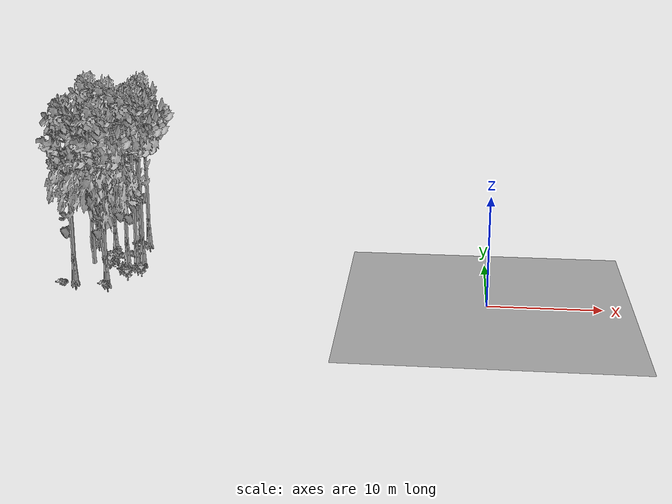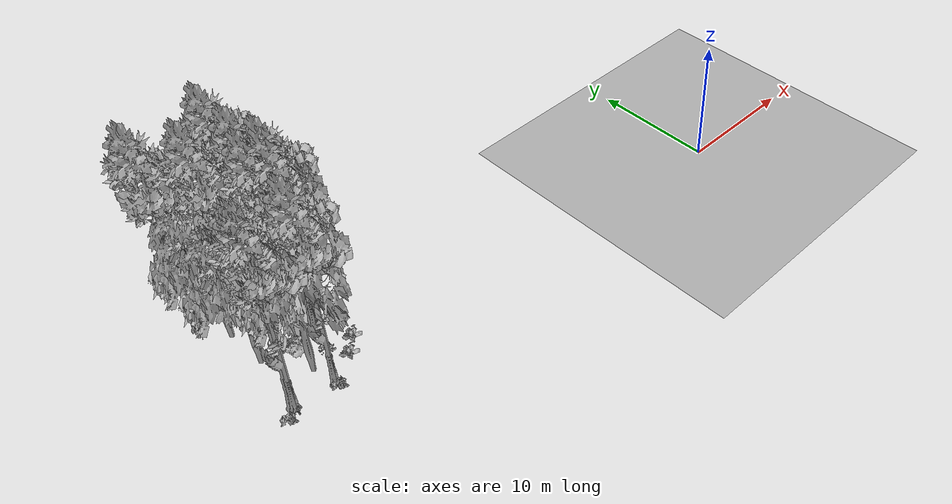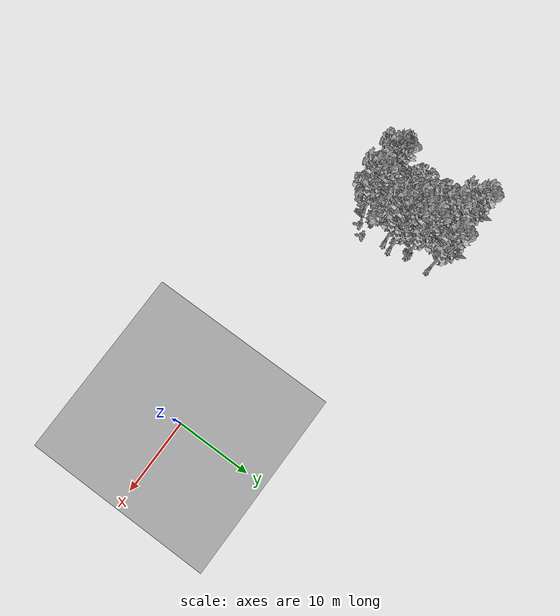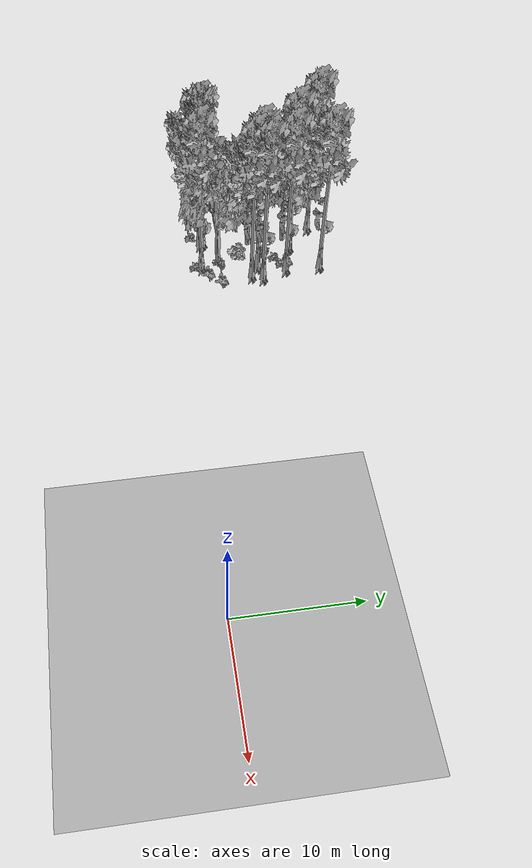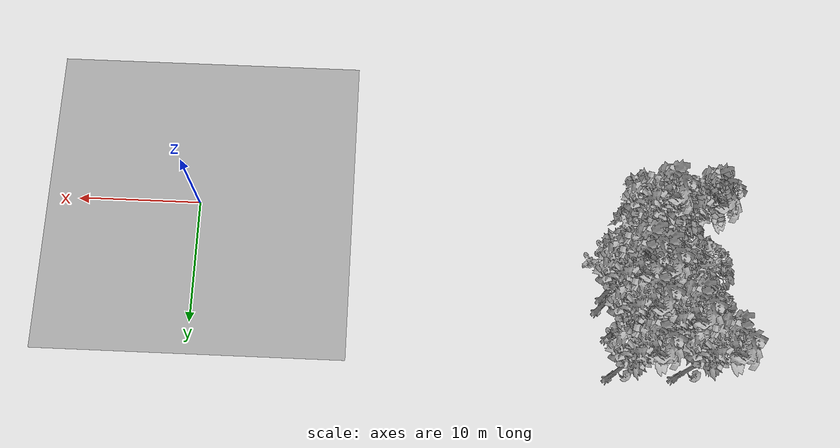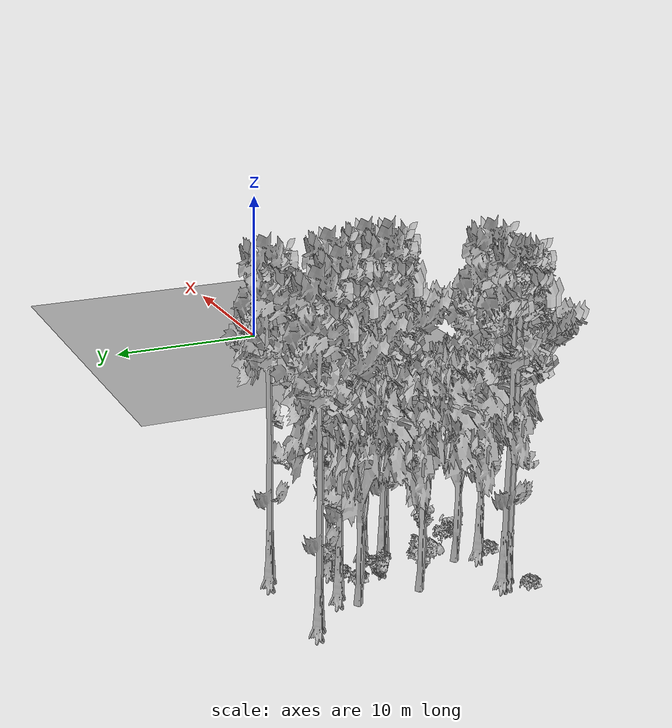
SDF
<sdf version="1.7">
 <world name="default">
  <model name="ground_plane">
   <static>1</static>
   <link name="link">
    <collision name="collision">
     <pose>-50 0 0 0 -0 0</pose>
     <geometry><plane><normal>0 0 1</normal><size>80 80</size></plane></geometry>
     <surface><contact><ode><min_depth>0.01</min_depth><max_vel>0</max_vel></ode></contact></surface>
    </collision>
    <visual name="grass">
     <cast_shadows>0</cast_shadows>
     <geometry>
      <mesh>
       <scale>0.46714285714285714 0.46714285714285714 0.1</scale>
       <uri>file://grass_plane/meshes/grass_plane.dae</uri>
      </mesh>
     </geometry>
    </visual>
   </link>
  </model>
  <model name="Tree 56">
   <static>1</static>
   <pose>-38.509563770273566 12.957092862063242 0 1.57079 -0 0</pose>
   <link name="link">
    <collision name="collision">
     <geometry><mesh><scale>3.5 5 3.5</scale><uri>model://tree_9/meshes/tree_9.obj</uri></mesh></geometry>
    </collision>
    <visual name="visual">
     <geometry><mesh><scale>3.5 5 3.5</scale><uri>model://tree_9/meshes/tree_9.obj</uri></mesh></geometry>
    </visual>
   </link>
  </model>
  <model name="Tree 95">
   <static>1</static>
   <pose>-34.638376565627155 2.3630144681504532 0 1.57079 -0 0</pose>
   <link name="link">
    <collision name="collision">
     <geometry><mesh><scale>3.5 5 3.5</scale><uri>model://tree_9/meshes/tree_9.obj</uri></mesh></geometry>
    </collision>
    <visual name="visual">
     <geometry><mesh><scale>3.5 5 3.5</scale><uri>model://tree_9/meshes/tree_9.obj</uri></mesh></geometry>
    </visual>
   </link>
  </model>
  <model name="Tree 131">
   <static>1</static>
   <pose>-32.569076399383675 7.786899542794501 0 1.57079 -0 0</pose>
   <link name="link">
    <collision name="collision">
     <geometry><mesh><scale>3.5 5 3.5</scale><uri>model://tree_9/meshes/tree_9.obj</uri></mesh></geometry>
    </collision>
    <visual name="visual">
     <geometry><mesh><scale>3.5 5 3.5</scale><uri>model://tree_9/meshes/tree_9.obj</uri></mesh></geometry>
    </visual>
   </link>
  </model>
  <model name="Tree 149">
   <static>1</static>
   <pose>-33.32498593850913 9.995974989439027 0 1.57079 -0 0</pose>
   <link name="link">
    <collision name="collision">
     <geometry><mesh><scale>3.5 5 3.5</scale><uri>model://tree_9/meshes/tree_9.obj</uri></mesh></geometry>
    </collision>
    <visual name="visual">
     <geometry><mesh><scale>3.5 5 3.5</scale><uri>model://tree_9/meshes/tree_9.obj</uri></mesh></geometry>
    </visual>
   </link>
  </model>
  <model name="Tree 150">
   <static>1</static>
   <pose>-36.066849748524646 10.790046085759215 0 1.57079 -0 0</pose>
   <link name="link">
    <collision name="collision">
     <geometry><mesh><scale>3.5 5 3.5</scale><uri>model://tree_9/meshes/tree_9.obj</uri></mesh></geometry>
    </collision>
    <visual name="visual">
     <geometry><mesh><scale>3.5 5 3.5</scale><uri>model://tree_9/meshes/tree_9.obj</uri></mesh></geometry>
    </visual>
   </link>
  </model>
  <model name="Tree 191">
   <static>1</static>
   <pose>-35.21169367827107 3.957473743582689 0 1.57079 -0 0</pose>
   <link name="link">
    <collision name="collision">
     <geometry><mesh><scale>3.5 5 3.5</scale><uri>model://tree_2/meshes/tree_2.obj</uri></mesh></geometry>
    </collision>
    <visual name="visual">
     <geometry><mesh><scale>3.5 5 3.5</scale><uri>model://tree_2/meshes/tree_2.obj</uri></mesh></geometry>
    </visual>
   </link>
  </model>
  <model name="Tree 206">
   <static>1</static>
   <pose>-37.37449914864902 10.320525778654613 0 1.57079 -0 0</pose>
   <link name="link">
    <collision name="collision">
     <geometry><mesh><scale>3.5 5 3.5</scale><uri>model://tree_2/meshes/tree_2.obj</uri></mesh></geometry>
    </collision>
    <visual name="visual">
     <geometry><mesh><scale>3.5 5 3.5</scale><uri>model://tree_2/meshes/tree_2.obj</uri></mesh></geometry>
    </visual>
   </link>
  </model>
  <model name="Tree 219">
   <static>1</static>
   <pose>-34.018633885471544 7.483365764243146 0 1.57079 -0 0</pose>
   <link name="link">
    <collision name="collision">
     <geometry><mesh><scale>3.5 5 3.5</scale><uri>model://tree_9/meshes/tree_9.obj</uri></mesh></geometry>
    </collision>
    <visual name="visual">
     <geometry><mesh><scale>3.5 5 3.5</scale><uri>model://tree_9/meshes/tree_9.obj</uri></mesh></geometry>
    </visual>
   </link>
  </model>
  <model name="Tree 323">
   <static>1</static>
   <pose>-32.94274572387295 6.783093127608623 0 1.57079 -0 0</pose>
   <link name="link">
    <collision name="collision">
     <geometry><mesh><scale>3.5 5 3.5</scale><uri>model://tree_9/meshes/tree_9.obj</uri></mesh></geometry>
    </collision>
    <visual name="visual">
     <geometry><mesh><scale>3.5 5 3.5</scale><uri>model://tree_9/meshes/tree_9.obj</uri></mesh></geometry>
    </visual>
   </link>
  </model>
  <model name="Tree 390">
   <static>1</static>
   <pose>-37.242431351301754 7.016925348454635 0 1.57079 -0 0</pose>
   <link name="link">
    <collision name="collision">
     <geometry><mesh><scale>3.5 5 3.5</scale><uri>model://tree_2/meshes/tree_2.obj</uri></mesh></geometry>
    </collision>
    <visual name="visual">
     <geometry><mesh><scale>3.5 5 3.5</scale><uri>model://tree_2/meshes/tree_2.obj</uri></mesh></geometry>
    </visual>
   </link>
  </model>
  <model name="Tree 424">
   <static>1</static>
   <pose>-37.6998042514907 2.5215248046603804 0 1.57079 -0 0</pose>
   <link name="link">
    <collision name="collision">
     <geometry><mesh><scale>3.5 5 3.5</scale><uri>model://tree_9/meshes/tree_9.obj</uri></mesh></geometry>
    </collision>
    <visual name="visual">
     <geometry><mesh><scale>3.5 5 3.5</scale><uri>model://tree_9/meshes/tree_9.obj</uri></mesh></geometry>
    </visual>
   </link>
  </model>
  <model name="Tree 559">
   <static>1</static>
   <pose>-37.746953382118704 2.828844663641675 0 1.57079 -0 0</pose>
   <link name="link">
    <collision name="collision">
     <geometry><mesh><scale>3.5 5 3.5</scale><uri>model://tree_9/meshes/tree_9.obj</uri></mesh></geometry>
    </collision>
    <visual name="visual">
     <geometry><mesh><scale>3.5 5 3.5</scale><uri>model://tree_9/meshes/tree_9.obj</uri></mesh></geometry>
    </visual>
   </link>
  </model>
  <model name="Tree 567">
   <static>1</static>
   <pose>-33.31854723035046 13.148936414602055 0 1.57079 -0 0</pose>
   <link name="link">
    <collision name="collision">
     <geometry><mesh><scale>3.5 5 3.5</scale><uri>model://tree_9/meshes/tree_9.obj</uri></mesh></geometry>
    </collision>
    <visual name="visual">
     <geometry><mesh><scale>3.5 5 3.5</scale><uri>model://tree_9/meshes/tree_9.obj</uri></mesh></geometry>
    </visual>
   </link>
  </model>
  <model name="Bush 62">
   <static>1</static>
   <pose>-35.00563498548929 9.131491219371988 0 1.57079 -0 0</pose>
   <link name="link">
    <collision name="collision">
     <geometry><mesh><scale>2 2 2</scale><uri>model://bush_2/meshes/bush_2.obj</uri></mesh></geometry>
     <surface><contact><collide_without_contact>false</collide_without_contact></contact></surface>
    </collision>
    <visual name="visual">
     <geometry><mesh><scale>2 2 2</scale><uri>model://bush_2/meshes/bush_2.obj</uri></mesh></geometry>
    </visual>
   </link>
  </model>
  <model name="Bush 116">
   <static>1</static>
   <pose>-34.70417953152675 1.7350142029276583 0 1.57079 -0 0</pose>
   <link name="link">
    <collision name="collision">
     <geometry><mesh><scale>2 2 2</scale><uri>model://bush_2/meshes/bush_2.obj</uri></mesh></geometry>
     <surface><contact><collide_without_contact>false</collide_without_contact></contact></surface>
    </collision>
    <visual name="visual">
     <geometry><mesh><scale>2 2 2</scale><uri>model://bush_2/meshes/bush_2.obj</uri></mesh></geometry>
    </visual>
   </link>
  </model>
  <model name="Bush 212">
   <static>1</static>
   <pose>-35.23375535781692 8.125368276265078 0 1.57079 -0 0</pose>
   <link name="link">
    <collision name="collision">
     <geometry><mesh><scale>2 2 2</scale><uri>model://bush_4/meshes/bush_4.obj</uri></mesh></geometry>
     <surface><contact><collide_without_contact>false</collide_without_contact></contact></surface>
    </collision>
    <visual name="visual">
     <geometry><mesh><scale>2 2 2</scale><uri>model://bush_4/meshes/bush_4.obj</uri></mesh></geometry>
    </visual>
   </link>
  </model>
  <model name="Bush 219">
   <static>1</static>
   <pose>-33.39617308305038 10.094169641036395 0 1.57079 -0 0</pose>
   <link name="link">
    <collision name="collision">
     <geometry><mesh><scale>2 2 2</scale><uri>model://bush_0/meshes/bush_0.obj</uri></mesh></geometry>
     <surface><contact><collide_without_contact>false</collide_without_contact></contact></surface>
    </collision>
    <visual name="visual">
     <geometry><mesh><scale>2 2 2</scale><uri>model://bush_0/meshes/bush_0.obj</uri></mesh></geometry>
    </visual>
   </link>
  </model>
  <model name="Bush 240">
   <static>1</static>
   <pose>-35.24054048266457 5.628570876123348 0 1.57079 -0 0</pose>
   <link name="link">
    <collision name="collision">
     <geometry><mesh><scale>2 2 2</scale><uri>model://bush_1/meshes/bush_1.obj</uri></mesh></geometry>
     <surface><contact><collide_without_contact>false</collide_without_contact></contact></surface>
    </collision>
    <visual name="visual">
     <geometry><mesh><scale>2 2 2</scale><uri>model://bush_1/meshes/bush_1.obj</uri></mesh></geometry>
    </visual>
   </link>
  </model>
  <model name="Bush 268">
   <static>1</static>
   <pose>-32.81118651365094 2.9031802853602784 0 1.57079 -0 0</pose>
   <link name="link">
    <collision name="collision">
     <geometry><mesh><scale>2 2 2</scale><uri>model://bush_0/meshes/bush_0.obj</uri></mesh></geometry>
     <surface><contact><collide_without_contact>false</collide_without_contact></contact></surface>
    </collision>
    <visual name="visual">
     <geometry><mesh><scale>2 2 2</scale><uri>model://bush_0/meshes/bush_0.obj</uri></mesh></geometry>
    </visual>
   </link>
  </model>
  <model name="Bush 451">
   <static>1</static>
   <pose>-33.82636301232463 4.100947854394008 0 1.57079 -0 0</pose>
   <link name="link">
    <collision name="collision">
     <geometry><mesh><scale>2 2 2</scale><uri>model://bush_5/meshes/bush_5.obj</uri></mesh></geometry>
     <surface><contact><collide_without_contact>false</collide_without_contact></contact></surface>
    </collision>
    <visual name="visual">
     <geometry><mesh><scale>2 2 2</scale><uri>model://bush_5/meshes/bush_5.obj</uri></mesh></geometry>
    </visual>
   </link>
  </model>
  <model name="Bush 523">
   <static>1</static>
   <pose>-38.65862405982927 1.7381554443390854 0 1.57079 -0 0</pose>
   <link name="link">
    <collision name="collision">
     <geometry><mesh><scale>2 2 2</scale><uri>model://bush_2/meshes/bush_2.obj</uri></mesh></geometry>
     <surface><contact><collide_without_contact>false</collide_without_contact></contact></surface>
    </collision>
    <visual name="visual">
     <geometry><mesh><scale>2 2 2</scale><uri>model://bush_2/meshes/bush_2.obj</uri></mesh></geometry>
    </visual>
   </link>
  </model>
  <model name="Bush 582">
   <static>1</static>
   <pose>-31.776488922328145 3.9829045475947424 0 1.57079 -0 0</pose>
   <link name="link">
    <collision name="collision">
     <geometry><mesh><scale>2 2 2</scale><uri>model://bush_0/meshes/bush_0.obj</uri></mesh></geometry>
     <surface><contact><collide_without_contact>false</collide_without_contact></contact></surface>
    </collision>
    <visual name="visual">
     <geometry><mesh><scale>2 2 2</scale><uri>model://bush_0/meshes/bush_0.obj</uri></mesh></geometry>
    </visual>
   </link>
  </model>
  <model name="Bush 606">
   <static>1</static>
   <pose>-34.13980625271 9.676704703585457 0 1.57079 -0 0</pose>
   <link name="link">
    <collision name="collision">
     <geometry><mesh><scale>2 2 2</scale><uri>model://bush_2/meshes/bush_2.obj</uri></mesh></geometry>
     <surface><contact><collide_without_contact>false</collide_without_contact></contact></surface>
    </collision>
    <visual name="visual">
     <geometry><mesh><scale>2 2 2</scale><uri>model://bush_2/meshes/bush_2.obj</uri></mesh></geometry>
    </visual>
   </link>
  </model>
 </world>
</sdf>
